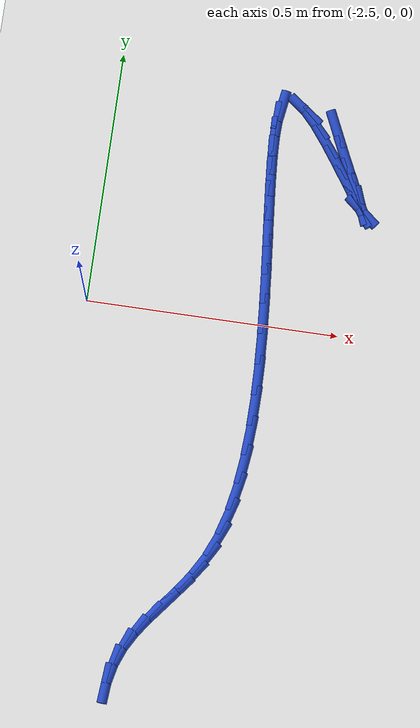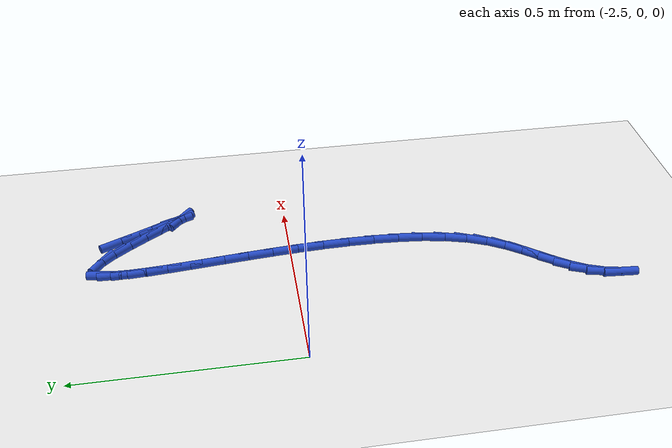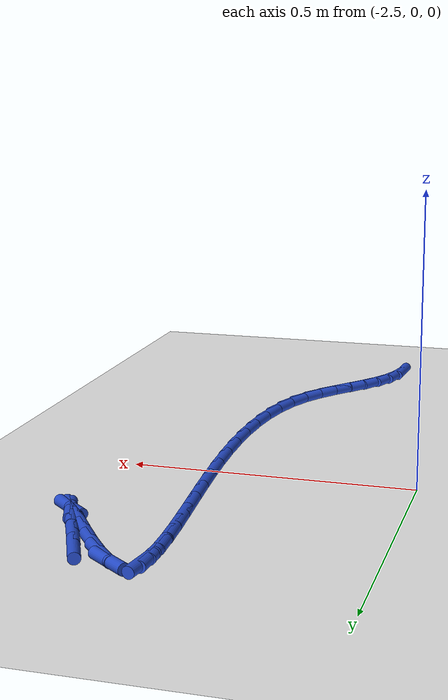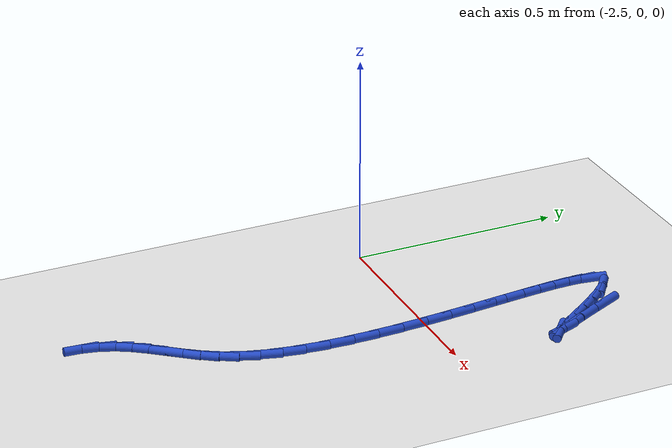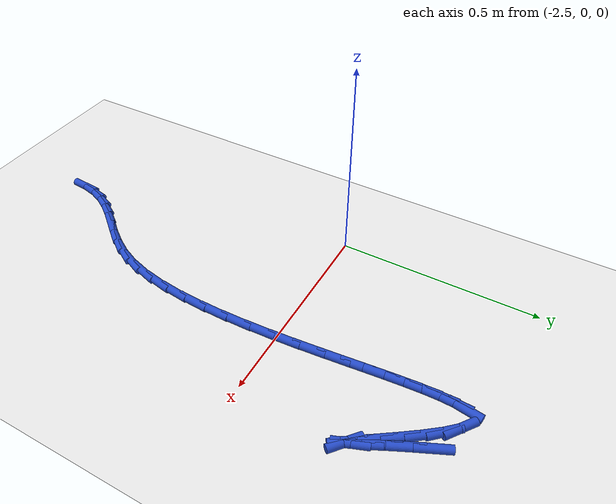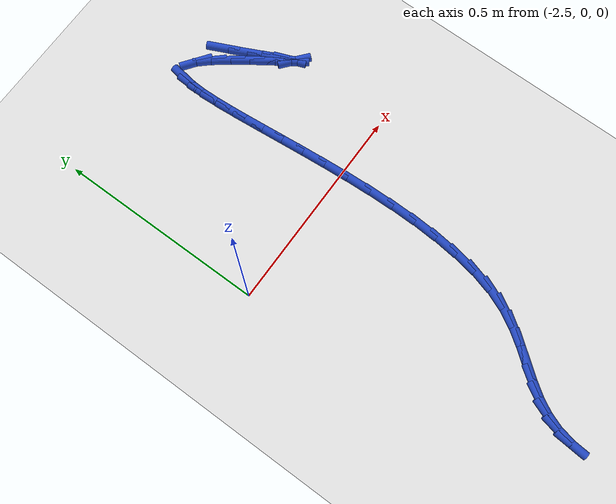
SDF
<sdf version="1.6">
 <world name="default">
  <model name="ground_plane">
   <static>1</static>
   <link name="link">
    <collision name="collision">
     <geometry><plane><normal>0 0 1</normal><size>100 100</size></plane></geometry>
     <surface><friction><ode><mu>100</mu><mu2>50</mu2></ode></friction></surface>
    </collision>
    <visual name="visual">
     <cast_shadows>0</cast_shadows>
     <geometry><plane><normal>0 0 1</normal><size>100 100</size></plane></geometry>
     <material>
      <script><uri>file://media/materials/scripts/gazebo.material</uri><name>Gazebo/WhiteGlow</name></script>
     </material>
    </visual>
   </link>
  </model>
  <model name="line">
   <link name="link_97">
    <pose>-2.0597568774763015 0.40869563490547867 0.01 0 1.57 -1.13744697166554</pose>
    <collision name="collision">
     <geometry><cylinder><radius>0.01</radius><length>0.08</length></cylinder></geometry>
    </collision>
    <visual name="visual">
     <material>
      <script><name>Gazebo/Blue</name><uri>file://media/materials/scripts/gazebo.material</uri></script>
     </material>
     <geometry><cylinder><radius>0.01</radius><length>0.08</length></cylinder></geometry>
    </visual>
   </link>
   <link name="link_98">
    <pose>-2.0374691366653916 0.360524788347885 0.01 0 1.57 -1.1247046247364183</pose>
    <collision name="collision">
     <geometry><cylinder><radius>0.01</radius><length>0.08</length></cylinder></geometry>
    </collision>
    <visual name="visual">
     <material>
      <script><name>Gazebo/Blue</name><uri>file://media/materials/scripts/gazebo.material</uri></script>
     </material>
     <geometry><cylinder><radius>0.01</radius><length>0.08</length></cylinder></geometry>
    </visual>
   </link>
   <link name="link_99">
    <pose>-2.0176950965348435 0.3191775971583021 0.01 0 1.57 -1.119586695984309</pose>
    <collision name="collision">
     <geometry><cylinder><radius>0.01</radius><length>0.08</length></cylinder></geometry>
    </collision>
    <visual name="visual">
     <material>
      <script><name>Gazebo/Blue</name><uri>file://media/materials/scripts/gazebo.material</uri></script>
     </material>
     <geometry><cylinder><radius>0.01</radius><length>0.08</length></cylinder></geometry>
    </visual>
   </link>
   <link name="link_100">
    <pose>-2.001810487399484 0.28639526228863127 0.01 0 1.57 -1.129411322126289</pose>
    <collision name="collision">
     <geometry><cylinder><radius>0.01</radius><length>0.08</length></cylinder></geometry>
    </collision>
    <visual name="visual">
     <material>
      <script><name>Gazebo/Blue</name><uri>file://media/materials/scripts/gazebo.material</uri></script>
     </material>
     <geometry><cylinder><radius>0.01</radius><length>0.08</length></cylinder></geometry>
    </visual>
   </link>
   <link name="link_101">
    <pose>-1.9911910395741423 0.26391898469077546 0.01 0 1.57 -1.206348839696076</pose>
    <collision name="collision">
     <geometry><cylinder><radius>0.01</radius><length>0.08</length></cylinder></geometry>
    </collision>
    <visual name="visual">
     <material>
      <script><name>Gazebo/Blue</name><uri>file://media/materials/scripts/gazebo.material</uri></script>
     </material>
     <geometry><cylinder><radius>0.01</radius><length>0.08</length></cylinder></geometry>
    </visual>
   </link>
   <link name="link_102">
    <pose>-1.9872124833736475 0.253489965316636 0.01 0 1.57 -0.6939170844326985</pose>
    <collision name="collision">
     <geometry><cylinder><radius>0.01</radius><length>0.08</length></cylinder></geometry>
    </collision>
    <visual name="visual">
     <material>
      <script><name>Gazebo/Blue</name><uri>file://media/materials/scripts/gazebo.material</uri></script>
     </material>
     <geometry><cylinder><radius>0.01</radius><length>0.08</length></cylinder></geometry>
    </visual>
   </link>
   <link name="link_103">
    <pose>-1.9912505491128263 0.2568494051181147 0.01 0 1.57 -0.9506753662031162</pose>
    <collision name="collision">
     <geometry><cylinder><radius>0.01</radius><length>0.08</length></cylinder></geometry>
    </collision>
    <visual name="visual">
     <material>
      <script><name>Gazebo/Blue</name><uri>file://media/materials/scripts/gazebo.material</uri></script>
     </material>
     <geometry><cylinder><radius>0.01</radius><length>0.08</length></cylinder></geometry>
    </visual>
   </link>
   <link name="link_104">
    <pose>-2.0043931037376876 0.2752539823826064 0.01 0 1.57 -0.9711679942299836</pose>
    <collision name="collision">
     <geometry><cylinder><radius>0.01</radius><length>0.08</length></cylinder></geometry>
    </collision>
    <visual name="visual">
     <material>
      <script><name>Gazebo/Blue</name><uri>file://media/materials/scripts/gazebo.material</uri></script>
     </material>
     <geometry><cylinder><radius>0.01</radius><length>0.08</length></cylinder></geometry>
    </visual>
   </link>
   <link name="link_105">
    <pose>-2.0251378442578485 0.30560068196290546 0.01 0 1.57 -0.9663067713838672</pose>
    <collision name="collision">
     <geometry><cylinder><radius>0.01</radius><length>0.08</length></cylinder></geometry>
    </collision>
    <visual name="visual">
     <material>
      <script><name>Gazebo/Blue</name><uri>file://media/materials/scripts/gazebo.material</uri></script>
     </material>
     <geometry><cylinder><radius>0.01</radius><length>0.08</length></cylinder></geometry>
    </visual>
   </link>
   <link name="link_106">
    <pose>-2.050612033810298 0.3424798170633156 0.01 0 1.57 -0.9472557072278681</pose>
    <collision name="collision">
     <geometry><cylinder><radius>0.01</radius><length>0.08</length></cylinder></geometry>
    </collision>
    <visual name="visual">
     <material>
      <script><name>Gazebo/Blue</name><uri>file://media/materials/scripts/gazebo.material</uri></script>
     </material>
     <geometry><cylinder><radius>0.01</radius><length>0.08</length></cylinder></geometry>
    </visual>
   </link>
   <link name="link_107">
    <pose>-2.0779304650547727 0.3804607109688932 0.01 0 1.57 -0.9078358654293579</pose>
    <collision name="collision">
     <geometry><cylinder><radius>0.01</radius><length>0.08</length></cylinder></geometry>
    </collision>
    <visual name="visual">
     <material>
      <script><name>Gazebo/Blue</name><uri>file://media/materials/scripts/gazebo.material</uri></script>
     </material>
     <geometry><cylinder><radius>0.01</radius><length>0.08</length></cylinder></geometry>
    </visual>
   </link>
   <link name="link_108">
    <pose>-2.104207930651012 0.4141126869646954 0.01 0 1.57 -0.8212942163354101</pose>
    <collision name="collision">
     <geometry><cylinder><radius>0.01</radius><length>0.08</length></cylinder></geometry>
    </collision>
    <visual name="visual">
     <material>
      <script><name>Gazebo/Blue</name><uri>file://media/materials/scripts/gazebo.material</uri></script>
     </material>
     <geometry><cylinder><radius>0.01</radius><length>0.08</length></cylinder></geometry>
    </visual>
   </link>
   <link name="link_109">
    <pose>-2.1267140437811545 0.4382954672912812 0.01 0 1.57 -0.632146121580998</pose>
    <collision name="collision">
     <geometry><cylinder><radius>0.01</radius><length>0.08</length></cylinder></geometry>
    </collision>
    <visual name="visual">
     <material>
      <script><name>Gazebo/Blue</name><uri>file://media/materials/scripts/gazebo.material</uri></script>
     </material>
     <geometry><cylinder><radius>0.01</radius><length>0.08</length></cylinder></geometry>
    </visual>
   </link>
   <link name="link_113">
    <pose>-2.174601200625606 0.43165982173859974 0.01 0 1.57 1.4228977601381918</pose>
    <collision name="collision">
     <geometry><cylinder><radius>0.01</radius><length>0.08</length></cylinder></geometry>
    </collision>
    <visual name="visual">
     <material>
      <script><name>Gazebo/Blue</name><uri>file://media/materials/scripts/gazebo.material</uri></script>
     </material>
     <geometry><cylinder><radius>0.01</radius><length>0.08</length></cylinder></geometry>
    </visual>
   </link>
   <link name="link_114">
    <pose>-2.1781284583812157 0.4079848000220603 0.01 0 1.57 1.5386608691191033</pose>
    <collision name="collision">
     <geometry><cylinder><radius>0.01</radius><length>0.08</length></cylinder></geometry>
    </collision>
    <visual name="visual">
     <material>
      <script><name>Gazebo/Blue</name><uri>file://media/materials/scripts/gazebo.material</uri></script>
     </material>
     <geometry><cylinder><radius>0.01</radius><length>0.08</length></cylinder></geometry>
    </visual>
   </link>
   <link name="link_115">
    <pose>-2.1791228863069825 0.3770505715108558 0.01 0 1.57 -1.5409837834416933</pose>
    <collision name="collision">
     <geometry><cylinder><radius>0.01</radius><length>0.08</length></cylinder></geometry>
    </collision>
    <visual name="visual">
     <material>
      <script><name>Gazebo/Blue</name><uri>file://media/materials/scripts/gazebo.material</uri></script>
     </material>
     <geometry><cylinder><radius>0.01</radius><length>0.08</length></cylinder></geometry>
    </visual>
   </link>
   <link name="link_116">
    <pose>-2.178006975779084 0.3396307548733281 0.01 0 1.57 -1.5058832156894224</pose>
    <collision name="collision">
     <geometry><cylinder><radius>0.01</radius><length>0.08</length></cylinder></geometry>
    </collision>
    <visual name="visual">
     <material>
      <script><name>Gazebo/Blue</name><uri>file://media/materials/scripts/gazebo.material</uri></script>
     </material>
     <geometry><cylinder><radius>0.01</radius><length>0.08</length></cylinder></geometry>
    </visual>
   </link>
   <link name="link_117">
    <pose>-2.1752032181737007 0.29649896877781806 0.01 0 1.57 -1.4863481430982717</pose>
    <collision name="collision">
     <geometry><cylinder><radius>0.01</radius><length>0.08</length></cylinder></geometry>
    </collision>
    <visual name="visual">
     <material>
      <script><name>Gazebo/Blue</name><uri>file://media/materials/scripts/gazebo.material</uri></script>
     </material>
     <geometry><cylinder><radius>0.01</radius><length>0.08</length></cylinder></geometry>
    </visual>
   </link>
   <link name="link_118">
    <pose>-2.17113410486701 0.24842883189266732 0.01 0 1.57 -1.4770356751000846</pose>
    <collision name="collision">
     <geometry><cylinder><radius>0.01</radius><length>0.08</length></cylinder></geometry>
    </collision>
    <visual name="visual">
     <material>
      <script><name>Gazebo/Blue</name><uri>file://media/materials/scripts/gazebo.material</uri></script>
     </material>
     <geometry><cylinder><radius>0.01</radius><length>0.08</length></cylinder></geometry>
    </visual>
   </link>
   <link name="link_119">
    <pose>-2.1662221272351925 0.19619396288621627 0.01 0 1.57 -1.4752275600441023</pose>
    <collision name="collision">
     <geometry><cylinder><radius>0.01</radius><length>0.08</length></cylinder></geometry>
    </collision>
    <visual name="visual">
     <material>
      <script><name>Gazebo/Blue</name><uri>file://media/materials/scripts/gazebo.material</uri></script>
     </material>
     <geometry><cylinder><radius>0.01</radius><length>0.08</length></cylinder></geometry>
    </visual>
   </link>
   <link name="link_120">
    <pose>-2.1608897766544257 0.1405679804268077 0.01 0 1.57 -1.47953416205636</pose>
    <collision name="collision">
     <geometry><cylinder><radius>0.01</radius><length>0.08</length></cylinder></geometry>
    </collision>
    <visual name="visual">
     <material>
      <script><name>Gazebo/Blue</name><uri>file://media/materials/scripts/gazebo.material</uri></script>
     </material>
     <geometry><cylinder><radius>0.01</radius><length>0.08</length></cylinder></geometry>
    </visual>
   </link>
   <link name="link_121">
    <pose>-2.155559544500889 0.08232450318278231 0.01 0 1.57 -1.4893354827014613</pose>
    <collision name="collision">
     <geometry><cylinder><radius>0.01</radius><length>0.08</length></cylinder></geometry>
    </collision>
    <visual name="visual">
     <material>
      <script><name>Gazebo/Blue</name><uri>file://media/materials/scripts/gazebo.material</uri></script>
     </material>
     <geometry><cylinder><radius>0.01</radius><length>0.08</length></cylinder></geometry>
    </visual>
   </link>
   <link name="link_122">
    <pose>-2.1506539221507617 0.022237149822481428 0.01 0 1.57 -1.5045318165394668</pose>
    <collision name="collision">
     <geometry><cylinder><radius>0.01</radius><length>0.08</length></cylinder></geometry>
    </collision>
    <visual name="visual">
     <material>
      <script><name>Gazebo/Blue</name><uri>file://media/materials/scripts/gazebo.material</uri></script>
     </material>
     <geometry><cylinder><radius>0.01</radius><length>0.08</length></cylinder></geometry>
    </visual>
   </link>
   <link name="link_123">
    <pose>-2.146595400980223 -0.03892046098575376 0.01 0 1.57 -1.5254452508956367</pose>
    <collision name="collision">
     <geometry><cylinder><radius>0.01</radius><length>0.08</length></cylinder></geometry>
    </collision>
    <visual name="visual">
     <material>
      <script><name>Gazebo/Blue</name><uri>file://media/materials/scripts/gazebo.material</uri></script>
     </material>
     <geometry><cylinder><radius>0.01</radius><length>0.08</length></cylinder></geometry>
    </visual>
   </link>
   <link name="link_124">
    <pose>-2.1438064723654504 -0.10037471057358169 0.01 0 1.57 -1.5528105033399668</pose>
    <collision name="collision">
     <geometry><cylinder><radius>0.01</radius><length>0.08</length></cylinder></geometry>
    </collision>
    <visual name="visual">
     <material>
      <script><name>Gazebo/Blue</name><uri>file://media/materials/scripts/gazebo.material</uri></script>
     </material>
     <geometry><cylinder><radius>0.01</radius><length>0.08</length></cylinder></geometry>
    </visual>
   </link>
   <link name="link_125">
    <pose>-2.1427096276826227 -0.16135198027266273 0.01 0 1.57 1.5537581741238344</pose>
    <collision name="collision">
     <geometry><cylinder><radius>0.01</radius><length>0.08</length></cylinder></geometry>
    </collision>
    <visual name="visual">
     <material>
      <script><name>Gazebo/Blue</name><uri>file://media/materials/scripts/gazebo.material</uri></script>
     </material>
     <geometry><cylinder><radius>0.01</radius><length>0.08</length></cylinder></geometry>
    </visual>
   </link>
   <link name="link_126">
    <pose>-2.1437273583079213 -0.2210786514146524 0.01 0 1.57 1.5092684339725986</pose>
    <collision name="collision">
     <geometry><cylinder><radius>0.01</radius><length>0.08</length></cylinder></geometry>
    </collision>
    <visual name="visual">
     <material>
      <script><name>Gazebo/Blue</name><uri>file://media/materials/scripts/gazebo.material</uri></script>
     </material>
     <geometry><cylinder><radius>0.01</radius><length>0.08</length></cylinder></geometry>
    </visual>
   </link>
   <link name="link_127">
    <pose>-2.1472821556175226 -0.27878110533121087 0.01 0 1.57 1.4526998415124792</pose>
    <collision name="collision">
     <geometry><cylinder><radius>0.01</radius><length>0.08</length></cylinder></geometry>
    </collision>
    <visual name="visual">
     <material>
      <script><name>Gazebo/Blue</name><uri>file://media/materials/scripts/gazebo.material</uri></script>
     </material>
     <geometry><cylinder><radius>0.01</radius><length>0.08</length></cylinder></geometry>
    </visual>
   </link>
   <link name="link_128">
    <pose>-2.1537965109876067 -0.3336857233539968 0.01 0 1.57 1.3803451480935518</pose>
    <collision name="collision">
     <geometry><cylinder><radius>0.01</radius><length>0.08</length></cylinder></geometry>
    </collision>
    <visual name="visual">
     <material>
      <script><name>Gazebo/Blue</name><uri>file://media/materials/scripts/gazebo.material</uri></script>
     </material>
     <geometry><cylinder><radius>0.01</radius><length>0.08</length></cylinder></geometry>
    </visual>
   </link>
   <link name="link_129">
    <pose>-2.1636929157943525 -0.38501888681466906 0.01 0 1.57 1.287078987074654</pose>
    <collision name="collision">
     <geometry><cylinder><radius>0.01</radius><length>0.08</length></cylinder></geometry>
    </collision>
    <visual name="visual">
     <material>
      <script><name>Gazebo/Blue</name><uri>file://media/materials/scripts/gazebo.material</uri></script>
     </material>
     <geometry><cylinder><radius>0.01</radius><length>0.08</length></cylinder></geometry>
    </visual>
   </link>
   <link name="link_130">
    <pose>-2.1773938614139388 -0.432006977044886 0.01 0 1.57 1.1672909234605386</pose>
    <collision name="collision">
     <geometry><cylinder><radius>0.01</radius><length>0.08</length></cylinder></geometry>
    </collision>
    <visual name="visual">
     <material>
      <script><name>Gazebo/Blue</name><uri>file://media/materials/scripts/gazebo.material</uri></script>
     </material>
     <geometry><cylinder><radius>0.01</radius><length>0.08</length></cylinder></geometry>
    </visual>
   </link>
   <link name="link_131">
    <pose>-2.1952861317370993 -0.47391598461856216 0.01 0 1.57 1.043486959239662</pose>
    <collision name="collision">
     <geometry><cylinder><radius>0.01</radius><length>0.08</length></cylinder></geometry>
    </collision>
    <visual name="visual">
     <material>
      <script><name>Gazebo/Blue</name><uri>file://media/materials/scripts/gazebo.material</uri></script>
     </material>
     <geometry><cylinder><radius>0.01</radius><length>0.08</length></cylinder></geometry>
    </visual>
   </link>
   <link name="link_132">
    <pose>-2.2168746876950762 -0.5109900798608615 0.01 0 1.57 0.9516519927604555</pose>
    <collision name="collision">
     <geometry><cylinder><radius>0.01</radius><length>0.08</length></cylinder></geometry>
    </collision>
    <visual name="visual">
     <material>
      <script><name>Gazebo/Blue</name><uri>file://media/materials/scripts/gazebo.material</uri></script>
     </material>
     <geometry><cylinder><radius>0.01</radius><length>0.08</length></cylinder></geometry>
    </visual>
   </link>
   <link name="link_133">
    <pose>-2.240747655526539 -0.5444904503132129 0.01 0 1.57 0.9016512556230507</pose>
    <collision name="collision">
     <geometry><cylinder><radius>0.01</radius><length>0.08</length></cylinder></geometry>
    </collision>
    <visual name="visual">
     <material>
      <script><name>Gazebo/Blue</name><uri>file://media/materials/scripts/gazebo.material</uri></script>
     </material>
     <geometry><cylinder><radius>0.01</radius><length>0.08</length></cylinder></geometry>
    </visual>
   </link>
   <link name="link_134">
    <pose>-2.265450448310154 -0.5757256639439046 0.01 0 1.57 0.8989795978483309</pose>
    <collision name="collision">
     <geometry><cylinder><radius>0.01</radius><length>0.08</length></cylinder></geometry>
    </collision>
    <visual name="visual">
     <material>
      <script><name>Gazebo/Blue</name><uri>file://media/materials/scripts/gazebo.material</uri></script>
     </material>
     <geometry><cylinder><radius>0.01</radius><length>0.08</length></cylinder></geometry>
    </visual>
   </link>
   <link name="link_135">
    <pose>-2.2895284791245873 -0.606004288721224 0.01 0 1.57 0.9479644350707639</pose>
    <collision name="collision">
     <geometry><cylinder><radius>0.01</radius><length>0.08</length></cylinder></geometry>
    </collision>
    <visual name="visual">
     <material>
      <script><name>Gazebo/Blue</name><uri>file://media/materials/scripts/gazebo.material</uri></script>
     </material>
     <geometry><cylinder><radius>0.01</radius><length>0.08</length></cylinder></geometry>
    </visual>
   </link>
   <link name="link_136">
    <pose>-2.3115271610485038 -0.6366348926134583 0.01 0 1.57 1.05135471486774</pose>
    <collision name="collision">
     <geometry><cylinder><radius>0.01</radius><length>0.08</length></cylinder></geometry>
    </collision>
    <visual name="visual">
     <material>
      <script><name>Gazebo/Blue</name><uri>file://media/materials/scripts/gazebo.material</uri></script>
     </material>
     <geometry><cylinder><radius>0.01</radius><length>0.08</length></cylinder></geometry>
    </visual>
   </link>
   <link name="link_137">
    <pose>-2.329991907160568 -0.6689260435888946 0.01 0 1.57 1.2017511476529998</pose>
    <collision name="collision">
     <geometry><cylinder><radius>0.01</radius><length>0.08</length></cylinder></geometry>
    </collision>
    <visual name="visual">
     <material>
      <script><name>Gazebo/Blue</name><uri>file://media/materials/scripts/gazebo.material</uri></script>
     </material>
     <geometry><cylinder><radius>0.01</radius><length>0.08</length></cylinder></geometry>
    </visual>
   </link>
   <link name="link_138">
    <pose>-2.343575724856025 -0.7040476651801674 0.01 0 1.57 1.3552054784323186</pose>
    <collision name="collision">
     <geometry><cylinder><radius>0.01</radius><length>0.08</length></cylinder></geometry>
    </collision>
    <visual name="visual">
     <material>
      <script><name>Gazebo/Blue</name><uri>file://media/materials/scripts/gazebo.material</uri></script>
     </material>
     <geometry><cylinder><radius>0.01</radius><length>0.08</length></cylinder></geometry>
    </visual>
   </link>
   <link name="link_139">
    <pose>-2.351876567133911 -0.7419520380728973 0.01 0 1.57 1.4933172782239725</pose>
    <collision name="collision">
     <geometry><cylinder><radius>0.01</radius><length>0.08</length></cylinder></geometry>
    </collision>
    <visual name="visual">
     <material>
      <script><name>Gazebo/Blue</name><uri>file://media/materials/scripts/gazebo.material</uri></script>
     </material>
     <geometry><cylinder><radius>0.01</radius><length>0.08</length></cylinder></geometry>
    </visual>
   </link>
  </model>
 </world>
</sdf>
